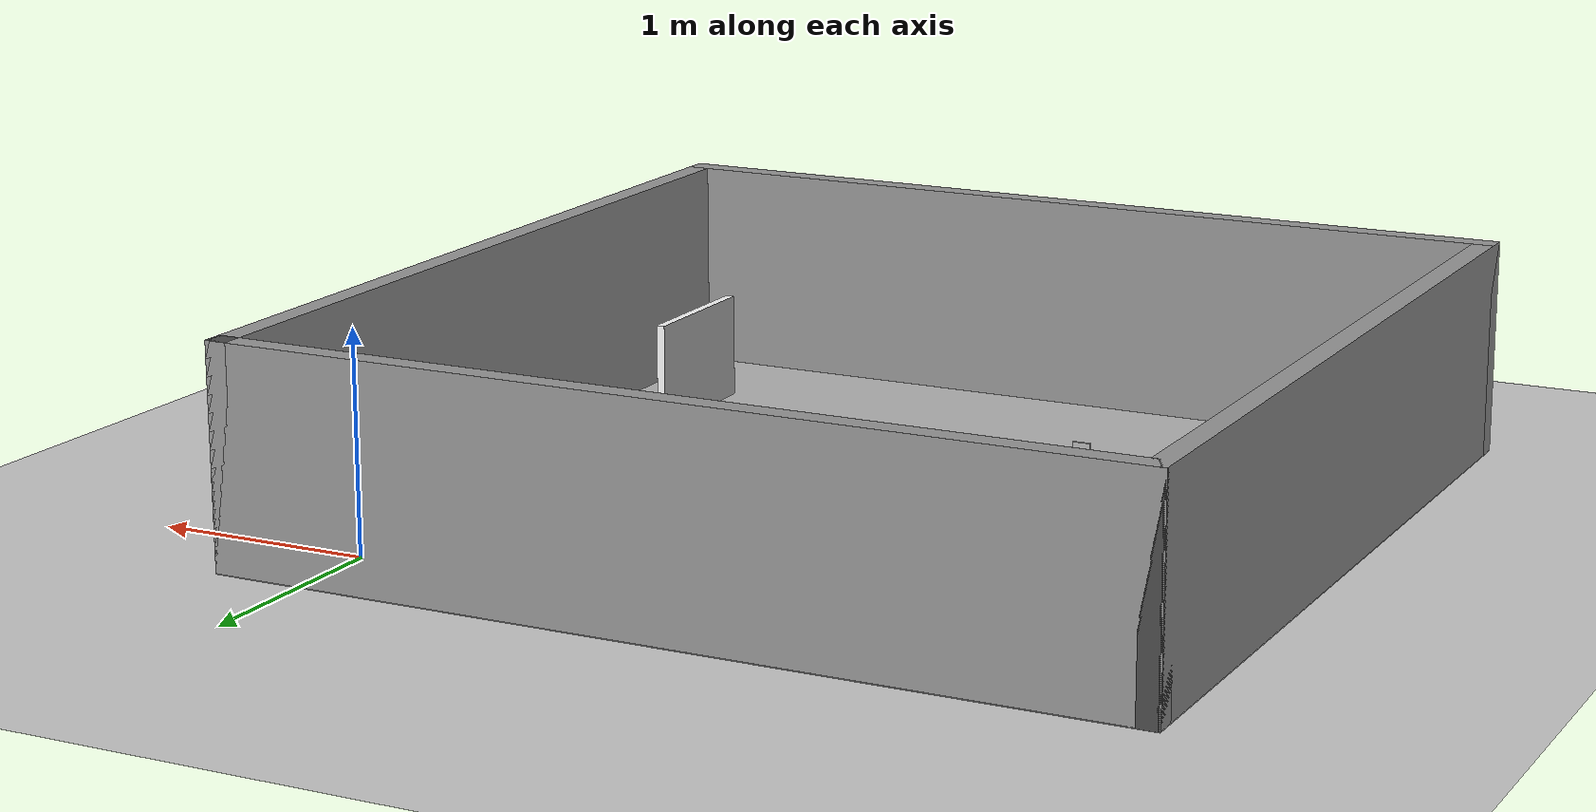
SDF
<sdf version="1.7">
 <world name="default">
  <light name="sun" type="directional">
   <pose>0 0 10 0 -0 0</pose>
   <diffuse>0.8 0.8 0.8 1</diffuse>
   <specular>0.2 0.2 0.2 1</specular>
   <attenuation>
    <range>1000</range>
    <constant>0.9</constant>
    <linear>0.01</linear>
    <quadratic>0.001</quadratic>
   </attenuation>
   <direction>-0.5 0.1 -0.9</direction>
   <spot><inner_angle>0</inner_angle><outer_angle>0</outer_angle><falloff>0</falloff></spot>
  </light>
  <model name="ground_plane">
   <static>1</static>
   <link name="link">
    <collision name="collision">
     <geometry><plane><normal>0 0 1</normal><size>100 100</size></plane></geometry>
     <surface>
      <contact><collide_bitmask>65535</collide_bitmask></contact>
      <friction><ode><mu>100</mu><mu2>50</mu2></ode></friction>
     </surface>
    </collision>
    <visual name="visual">
     <cast_shadows>0</cast_shadows>
     <geometry><plane><normal>0 0 1</normal><size>100 100</size></plane></geometry>
     <material>
      <script><uri>file://media/materials/scripts/gazebo.material</uri><name>Gazebo/Grey</name></script>
     </material>
    </visual>
   </link>
  </model>
  <gravity>0 0 -9.8</gravity>
  <magnetic_field>6e-06 2.3e-05 -4.2e-05</magnetic_field>
  <atmosphere type="adiabatic"/>
  <physics type="ode">
   <max_step_size>0.001</max_step_size>
   <real_time_factor>1</real_time_factor>
   <real_time_update_rate>1000</real_time_update_rate>
  </physics>
  <scene><ambient>0.4 0.4 0.4 1</ambient><background>0.7 0.7 0.7 1</background><shadows>1</shadows></scene>
  <spherical_coordinates>
   <surface_model>EARTH_WGS84</surface_model>
   <latitude_deg>0</latitude_deg>
   <longitude_deg>0</longitude_deg>
   <elevation>0</elevation>
   <heading_deg>0</heading_deg>
  </spherical_coordinates>
  <model name="complete_race_track">
   <static>1</static>
   <link name="floor_link">
    <visual name="route_visual">
     <geometry><plane><normal>0 0 1</normal><size>4.2 4.2</size></plane></geometry>
     <material>
      <script>
       <uri>model://complete_race_track/materials/scripts</uri>
       <uri>model://complete_race_track/materials/textures</uri>
       <name>RaceTrack/FloorTexture</name>
      </script>
     </material>
     <pose>0 0 0.001 0 -0 0</pose>
    </visual>
    <collision name="floor_collision">
     <geometry><plane><normal>0 0 1</normal><size>4.2 4.2</size></plane></geometry>
    </collision>
   </link>
   <link name="north_wall">
    <collision name="north_wall_collision"><geometry><box><size>4.2 0.1 1</size></box></geometry></collision>
    <visual name="north_wall_visual">
     <geometry><box><size>4.2 0.1 1</size></box></geometry>
     <material>
      <script><uri>file://media/materials/scripts/gazebo.material</uri><name>Gazebo/Grey</name></script>
     </material>
    </visual>
    <pose>0 2.05 0.5 0 -0 0</pose>
   </link>
   <link name="south_wall">
    <collision name="south_wall_collision"><geometry><box><size>4.2 0.1 1</size></box></geometry></collision>
    <visual name="south_wall_visual">
     <geometry><box><size>4.2 0.1 1</size></box></geometry>
     <material>
      <script><uri>file://media/materials/scripts/gazebo.material</uri><name>Gazebo/Grey</name></script>
     </material>
    </visual>
    <pose>0 -2.05 0.5 0 -0 0</pose>
   </link>
   <link name="east_wall">
    <collision name="east_wall_collision"><geometry><box><size>0.1 4.2 1</size></box></geometry></collision>
    <visual name="east_wall_visual">
     <geometry><box><size>0.1 4.2 1</size></box></geometry>
     <material>
      <script><uri>file://media/materials/scripts/gazebo.material</uri><name>Gazebo/Grey</name></script>
     </material>
    </visual>
    <pose>2.05 0 0.5 0 -0 0</pose>
   </link>
   <link name="west_wall">
    <collision name="west_wall_collision"><geometry><box><size>0.1 4.2 1</size></box></geometry></collision>
    <visual name="west_wall_visual">
     <geometry><box><size>0.1 4.2 1</size></box></geometry>
     <material>
      <script><uri>file://media/materials/scripts/gazebo.material</uri><name>Gazebo/Grey</name></script>
     </material>
    </visual>
    <pose>-2.05 0 0.5 0 -0 0</pose>
   </link>
   <link name="corner_ne">
    <collision name="corner_ne_collision"><geometry><box><size>0.1 0.1 1</size></box></geometry></collision>
    <visual name="corner_ne_visual">
     <geometry><box><size>0.1 0.1 1</size></box></geometry>
     <material>
      <script><uri>file://media/materials/scripts/gazebo.material</uri><name>Gazebo/DarkGrey</name></script>
     </material>
    </visual>
    <pose>2.05 2.05 0.5 0 -0 0</pose>
   </link>
   <link name="corner_nw">
    <collision name="corner_nw_collision"><geometry><box><size>0.1 0.1 1</size></box></geometry></collision>
    <visual name="corner_nw_visual">
     <geometry><box><size>0.1 0.1 1</size></box></geometry>
     <material>
      <script><uri>file://media/materials/scripts/gazebo.material</uri><name>Gazebo/DarkGrey</name></script>
     </material>
    </visual>
    <pose>-2.05 2.05 0.5 0 -0 0</pose>
   </link>
   <link name="corner_se">
    <collision name="corner_se_collision"><geometry><box><size>0.1 0.1 1</size></box></geometry></collision>
    <visual name="corner_se_visual">
     <geometry><box><size>0.1 0.1 1</size></box></geometry>
     <material>
      <script><uri>file://media/materials/scripts/gazebo.material</uri><name>Gazebo/DarkGrey</name></script>
     </material>
    </visual>
    <pose>2.05 -2.05 0.5 0 -0 0</pose>
   </link>
   <link name="corner_sw">
    <collision name="corner_sw_collision"><geometry><box><size>0.1 0.1 1</size></box></geometry></collision>
    <visual name="corner_sw_visual">
     <geometry><box><size>0.1 0.1 1</size></box></geometry>
     <material>
      <script><uri>file://media/materials/scripts/gazebo.material</uri><name>Gazebo/DarkGrey</name></script>
     </material>
    </visual>
    <pose>-2.05 -2.05 0.5 0 -0 0</pose>
   </link>
   <pose>-1.67966 -1.65116 0 0 -0 0</pose>
  </model>
  <model name="cp">
   <static>1</static>
   <link name="link">
    <visual name="visual"><geometry><mesh><uri>model://cp/meshes/cp.dae</uri></mesh></geometry></visual>
   </link>
   <pose>-0.113688 -2.72801 0 0 0 -1.57162</pose>
  </model>
  <model name="ro1">
   <static>1</static>
   <link name="link">
    <visual name="visual"><geometry><mesh><uri>model://ro1/meshes/ro1.dae</uri></mesh></geometry></visual>
   </link>
   <pose>-2.56373 -0.607201 0 0 -0 0</pose>
  </model>
  <model name="ro2">
   <static>1</static>
   <link name="link">
    <visual name="visual"><geometry><mesh><uri>model://ro2/meshes/ro2.dae</uri></mesh></geometry></visual>
   </link>
   <pose>-2.56174 -1.70947 0 0 0 -3.14142</pose>
  </model>
  <light name="user_point_light_0" type="point">
   <pose>-1.63272 -1.11437 1 0 -0 0</pose>
   <diffuse>0.5 0.5 0.5 1</diffuse>
   <specular>0.1 0.1 0.1 1</specular>
   <attenuation>
    <range>20</range>
    <constant>0.5</constant>
    <linear>0.01</linear>
    <quadratic>0.001</quadratic>
   </attenuation>
   <cast_shadows>0</cast_shadows>
   <direction>0 0 -1</direction>
  </light>
 </world>
</sdf>
